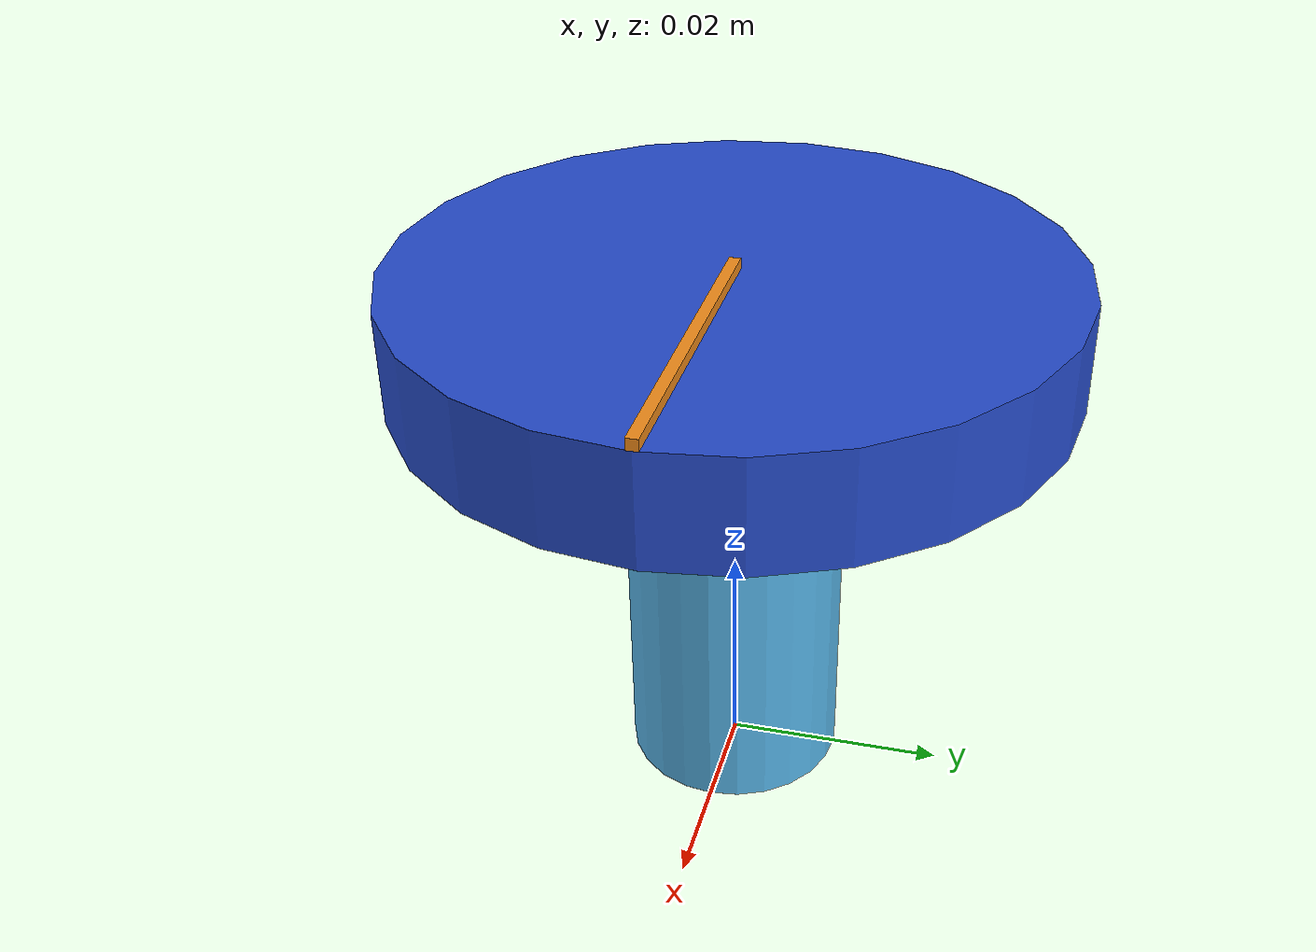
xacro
<?xml version="1.0"?>
<robot xmlns:xacro="http://www.ros.org/wiki/xacro"
       name="elmo_test_rig" >

  <xacro:include filename="$(find ipa_canopen_test)/urdf/elmo_test_rig.urdf.xacro" />

  <link name="world" />"

  <xacro:elmo_test_rig prefix="" parent="world">
    <origin xyz="0.0 0.0 0.0" rpy="0 0 0" />
  </xacro:elmo_test_rig>

  <gazebo>
    <plugin name="ros_control" filename="libgazebo_ros_control.so">
    </plugin>
  </gazebo>

</robot>

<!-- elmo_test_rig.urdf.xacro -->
<robot xmlns:xacro="http://www.ros.org/wiki/xacro"
       name="elmo_test_rig" >

  <xacro:include filename="$(find cob_description)/urdf/common.xacro" />
  <xacro:include filename="$(find cob_description)/urdf/materials.urdf.xacro" />
  <xacro:include filename="$(find ipa_canopen_test)/urdf/elmo_test_rig.transmission.xacro" />

  <property name="base_height" value="0.04" />
  <property name="base_radius" value="0.01" />
  <property name="plate_height" value="0.01" />
  <property name="plate_radius" value="0.03" />
  <property name="indicator_height" value="0.001" />

  <xacro:macro name="elmo_test_rig" params="prefix parent *origin">

    <joint name="${prefix}base_joint" type="fixed">
      <parent link="${parent}" />
      <child link = "${prefix}base_link" />
      <insert_block name="origin" />
    </joint>

    <link name="${prefix}base_link" >
      <visual>
        <origin xyz="0.0 0.0 ${base_height/2}" rpy="0 0 0" />
        <geometry>
          <cylinder length="${base_height}" radius="${base_radius}" />
        </geometry>
      </visual>
      <collision>
        <origin xyz="0.0 0.0 ${base_height/2}" rpy="0 0 0" />
        <geometry>
          <cylinder length="${base_height}" radius="${base_radius}" />
        </geometry>
      </collision>
      <xacro:cylinder_inertial radius="${base_radius}" length="${base_height}" mass="0.100">
        <origin xyz="0.0 0.0 ${base_height/2}" rpy="0 0 0" />
      </xacro:cylinder_inertial>
    </link>

    <joint name="${prefix}plate_joint" type="revolute">
      <parent link="${prefix}base_link" />
      <child link = "${prefix}plate_link" />
      <origin xyz="0.0 0.0 ${base_height}" rpy="0.0 0.0 0.0" />
      <axis xyz="0 0 1" />
      <limit lower="${-M_PI}" upper="${M_PI}" effort="10.0" velocity="3.15"/>
      <dynamics damping="0.0" friction="0.0"/>
    </joint>

    <link name="${prefix}plate_link" >
      <visual>
        <origin xyz="0.0 0.0 ${plate_height/2}" rpy="0 0 0" />
        <geometry>
          <cylinder length="${plate_height}" radius="${plate_radius}" />
        </geometry>
        <material name="IPA/Blue"/>
      </visual>
      <collision>
        <origin xyz="0.0 0.0 ${plate_height/2}" rpy="0 0 0" />
        <geometry>
          <cylinder length="${plate_height}" radius="${plate_radius}" />
        </geometry>
      </collision>
      <xacro:cylinder_inertial radius="${plate_radius}" length="${plate_height}" mass="0.100">
        <origin xyz="0.0 0.0 ${plate_height/2}" rpy="0 0 0" />
      </xacro:cylinder_inertial>
    </link>

    <joint name="${prefix}indicator_joint" type="fixed">
      <parent link="${prefix}plate_link" />
      <child link = "${prefix}indicator_link" />
      <origin xyz="0.0 0.0 ${plate_height}" rpy="0 0 0" />
    </joint>

    <link name="${prefix}indicator_link" >
      <visual>
        <origin xyz="${plate_radius/2} 0.0 ${indicator_height/2}" rpy="0 0 0" />
        <geometry>
          <box size="${plate_radius} ${indicator_height} ${indicator_height}" />
        </geometry>
        <material name="IPA/Orange"/>
      </visual>
      <collision>
        <origin xyz="${plate_radius/2} 0.0 ${indicator_height/2}" rpy="0 0 0" />
        <geometry>
          <box size="${plate_radius} ${indicator_height} ${indicator_height}" />
        </geometry>
      </collision>
      <xacro:box_inertial x="${plate_radius}" y="${indicator_height}" z="${indicator_height}" mass="0.050">
        <origin xyz="${plate_radius/2} 0.0 ${indicator_height/2}" rpy="0 0 0" />
      </xacro:box_inertial>
    </link>

    <!-- extensions -->
    <xacro:torso_transmission name="${prefix}plate" />

  </xacro:macro>

</robot>
